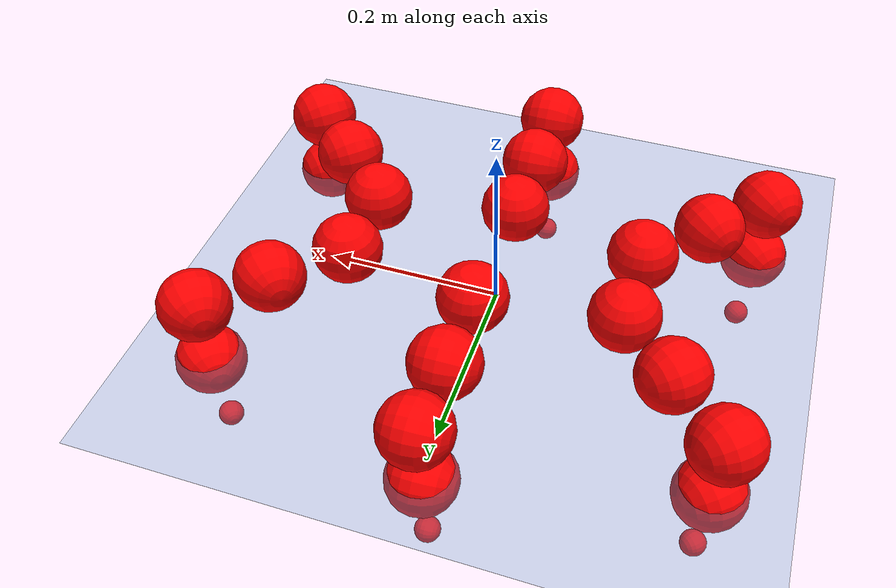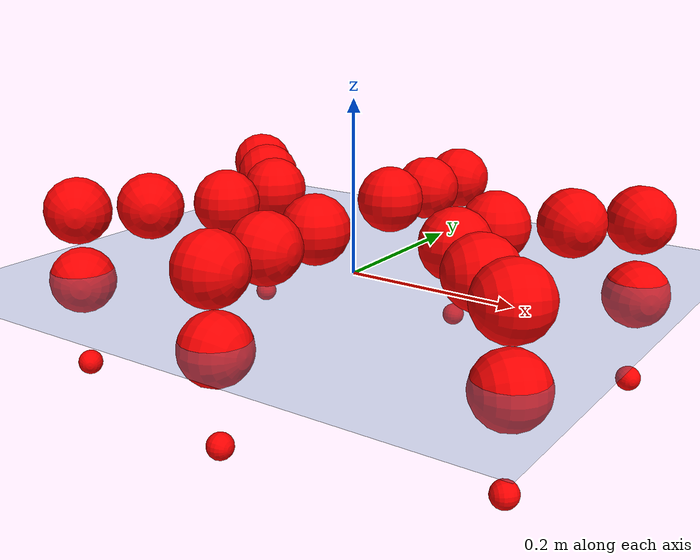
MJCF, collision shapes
<mujoco model="Golem">
  <compiler angle="radian" assetdir="assets" balanceinertia="true" inertiafromgeom="false"/>

  <option timestep="0.005" density="1.2" viscosity="2e-05"/>

  <size nkey="1"/>

  <visual>
    <quality shadowsize="8192"/>
    <map shadowclip="0.5"/>
  </visual>

  <default>
    <default class="/">
      <joint armature="0.01" damping="0.01" frictionloss="0.01"/>
      <geom contype="0" conaffinity="0" group="1" solref="-1000 -80"/>
      <site size="0.01 0.005 0.005" group="5"/>
      <general forcelimited="true" biastype="affine" gainprm="25" biasprm="0 -25 -0.5"/>
      <default class="visual">
        <geom type="mesh" group="2"/>
      </default>
      <default class="collision">
        <geom group="3"/>
      </default>
      <default class="foot">
        <geom size="0.01 0 0" condim="6" group="4" priority="1" solimp="0.015 1 0.01"/>
      </default>
      <default class="reward_collision_sphere">
        <geom group="5" rgba="1 0 0 1"/>
      </default>
    </default>
  </default>

  <asset>
    <texture type="skybox" colorspace="auto" name="//unnamed_texture_0" builtin="gradient" rgb1="0.95 0.95 0.95" rgb2="0.95 0.95 0.95" width="100" height="600"/>
    <texture type="2d" colorspace="auto" name="texplane" builtin="checker" rgb1="0.345 0.575 0.748" rgb2="0.345 0.575 0.748" markrgb="1 1 1" width="512" height="512"/>
    <material name="MatPlane" class="/" texture="texplane" texuniform="true" texrepeat="2 2" specular="0.9"/>
    <mesh name="body" class="/" file="body.stl" scale="0.001 0.001 0.001"/>
    <mesh name="coxa" class="/" file="coxa.stl" scale="0.001 0.001 0.001"/>
    <mesh name="femur" class="/" file="femur.stl" scale="0.001 0.001 0.001"/>
    <mesh name="tibia" class="/" file="tibia.stl" scale="0.001 0.001 0.001"/>
    <mesh name="tarsus" class="/" file="tarsus.stl" scale="0.001 0.001 0.001"/>
  </asset>

  <worldbody>
    <geom name="floor" class="/" size="100 100 0.125" type="plane" group="0" material="MatPlane"/>
    <light name="toplight_shadow" class="/" pos="0 0 5" dir="0.0990148 0.0990148 -0.990148" type="directional" ambient="0.04 0.04 0.04" diffuse="0.55 0.55 0.55" specular="0.12 0.12 0.12"/>
    <light name="toplight_fill" class="/" pos="0 0 5" dir="0.0990148 0.0990148 -0.990148" type="directional" castshadow="false" ambient="0.04 0.04 0.04" diffuse="0.3 0.3 0.3" specular="0.08 0.08 0.08"/>
    <body name="trunk" pos="0.000326958 0.000503715 -0.00260521" quat="1 1.98918e-05 2.15501e-05 -7.29814e-05">
      <inertial pos="0.000517287 -5.12219e-05 -0.00156338" quat="0.999976 -0.00671679 -0.000408307 -0.00163973" mass="3.42046" diaginertia="0.00840474 0.0027975 0.0204609"/>
      <joint name="//unnamed_joint_0" type="free"/>
      <geom name="//unnamed_geom_1" class="/" pos="0 0 0.0739012" quat="1 0 0 0" type="mesh" rgba="0.9 0.9 0.9 1" mesh="body"/>
      <site name="imu" class="/" pos="0.128559 -0.00140242 0.110186" size="0.00965766"/>
      <camera name="track" class="/" pos="0 -1.54301 0" quat="0.707107 0.707107 0 0" mode="trackcom"/>
      <camera name="ego_camera" class="/" pos="0.126241 0 0.115471" quat="-0.5 -0.5 0.5 0.5"/>
      <body name="coxa_RR" pos="-0.173098 -0.0641026 0.0733082" quat="0.382712 8.90334e-05 -1.30194e-05 -0.923868">
        <inertial pos="-7.47449e-05 -0.00253112 0.000871528" quat="0.999992 -0.000411208 0.00278729 -0.0028428" mass="0.173953" diaginertia="0.00822757 0.00271858 0.0195994"/>
        <joint name="coxa_joint_RR" class="/" pos="0 0 0" axis="0.00537845 0.00607545 -0.999967" range="-3.13703 3.11824" armature="0.00950181" damping="0.0132449" frictionloss="0.00964327"/>
        <geom name="//unnamed_geom_2" class="/" type="mesh" rgba="0.2 0.2 0.2 1" mesh="coxa"/>
        <geom name="//unnamed_geom_3" class="reward_collision_sphere" size="0.0386306" pos="-0.0291326 0 0"/>
        <body name="femur_RR" pos="0.0587343 -0.000363204 -0.00014788" quat="0.500158 -0.499643 0.499988 0.50021">
          <inertial pos="0.00110621 0.000202222 -0.000124329" quat="0.999999 -0.000313596 -0.00067553 -0.00150419" mass="0.179375" diaginertia="0.00861718 0.0027132 0.0203874"/>
          <joint name="femur_joint_RR" class="/" pos="0 0 0" axis="0.00036613 0.000248538 -1" range="-3.16023 3.0907" armature="0.00910034" damping="0" frictionloss="0.0102846"/>
          <geom name="//unnamed_geom_4" class="/" type="mesh" rgba="0.9 0.9 0.9 1" mesh="femur"/>
          <geom name="//unnamed_geom_5" class="reward_collision_sphere" size="0.0386306"/>
          <body name="tibia_RR" pos="0.0010687 -0.0818346 0.00231257" quat="2.85698e-05 1 6.78318e-06 2.40383e-05">
            <inertial pos="-0.00207037 -0.000539031 -4.50983e-06" quat="0.999969 -0.00199454 0.00750978 -0.00131035" mass="0.179847" diaginertia="0.00851749 0.00274035 0.0207223"/>
            <joint name="tibia_joint_RR" class="/" pos="0 0 0" axis="0.00111033 -0.00154811 0.999998" range="-3.19073 3.15331" armature="0.00900453" damping="0" frictionloss="0.00977512"/>
            <geom name="//unnamed_geom_6" class="/" type="mesh" rgba="0.2 0.2 0.2 1" mesh="tibia"/>
            <geom name="//unnamed_geom_7" class="reward_collision_sphere" size="0.0386306"/>
            <body name="tarsus_RR" pos="0.0835343 0.00103447 -5.97831e-05" quat="1 0.000153592 -0.000421235 0.000288511">
              <inertial pos="0.0567549 0.00272637 -0.00130785" quat="0.50359 0.499071 0.498239 0.499082" mass="0.178532" diaginertia="0.00856489 0.00271575 0.020442"/>
              <joint name="tarsus_joint_RR" class="/" pos="0 0 0" axis="-0.00021003 0.00100252 0.999999" range="-3.14368 3.13674" armature="0.0104433" damping="0.00712714" frictionloss="0.0105062"/>
              <geom name="//unnamed_geom_8" class="/" type="mesh" rgba="0.9 0.9 0.9 1" mesh="tarsus"/>
              <geom name="foot_1" class="foot" size="0.00910513" pos="0.108762 0 0" quat="0 -0.707107 0 0.707107"/>
              <geom name="//unnamed_geom_10" class="reward_collision_sphere" size="0.0386306"/>
              <geom name="//unnamed_geom_11" class="reward_collision_sphere" size="0.0144865" pos="0.104392 0 0"/>
              <site name="foot_1" class="foot" pos="0.108762 0 0" quat="0 -0.707107 0 0.707107" size="0.00965766"/>
            </body>
          </body>
        </body>
      </body>
      <body name="coxa_RM" pos="-0.000203841 -0.102971 0.0717148" quat="0.707127 -0.000959813 0.000952844 -0.707086">
        <inertial pos="-0.00209599 0.000160153 0.000752411" quat="0.999999 -0.000540818 3.25369e-05 -0.000849402" mass="0.177274" diaginertia="0.00842909 0.00267981 0.020834"/>
        <joint name="coxa_joint_RM" class="/" pos="0 0 0" axis="0.000887368 0.000246728 -1" range="-3.19248 3.14605" armature="0.0101852" damping="0.00983699" frictionloss="0.00966452"/>
        <geom name="//unnamed_geom_12" class="/" type="mesh" rgba="0.2 0.2 0.2 1" mesh="coxa"/>
        <geom name="//unnamed_geom_13" class="reward_collision_sphere" size="0.0386306" pos="-0.0291326 0 0"/>
        <body name="femur_RM" pos="0.0552099 0.000799734 0.000251851" quat="0.500652 -0.499367 0.49951 0.500469">
          <inertial pos="-0.000367806 0.000569014 -0.000673971" quat="0.999936 0.00640535 -0.00809123 -0.00457183" mass="0.184829" diaginertia="0.00885251 0.00273662 0.0208914"/>
          <joint name="femur_joint_RM" class="/" pos="0 0 0" axis="-0.00167554 -0.0020989 -0.999996" range="-3.14329 3.14502" armature="0.00964731" damping="0.00938801" frictionloss="0.0100083"/>
          <geom name="//unnamed_geom_14" class="/" type="mesh" rgba="0.9 0.9 0.9 1" mesh="femur"/>
          <geom name="//unnamed_geom_15" class="reward_collision_sphere" size="0.0386306"/>
          <body name="tibia_RM" pos="-0.000906318 -0.0826415 0.00172828" quat="-6.04586e-05 1 0.000213264 0.000185333">
            <inertial pos="0.00113018 0.0021234 0.00056445" quat="0.99999 -0.000610609 0.00160035 0.00422436" mass="0.185908" diaginertia="0.00895914 0.00282046 0.0212707"/>
            <joint name="tibia_joint_RM" class="/" pos="0 0 0" axis="-0.00141042 0.000672112 0.999999" range="-3.11641 3.08682" armature="0.00963983" damping="0" frictionloss="0.00992588"/>
            <geom name="//unnamed_geom_16" class="/" type="mesh" rgba="0.2 0.2 0.2 1" mesh="tibia"/>
            <geom name="//unnamed_geom_17" class="reward_collision_sphere" size="0.0386306"/>
            <body name="tarsus_RM" pos="0.082509 -0.00254638 0.000711956" quat="1 -0.00023686 -0.000658943 -0.00010422">
              <inertial pos="0.0577085 0.00303214 -0.000728012" quat="0.499324 0.499965 0.501338 0.499371" mass="0.171227" diaginertia="0.00852372 0.00265793 0.0202161"/>
              <joint name="tarsus_joint_RM" class="/" pos="0 0 0" axis="0.00134166 0.000296018 0.999999" range="-3.14273 3.15352" armature="0.00987161" damping="0.00344241" frictionloss="0.00959423"/>
              <geom name="//unnamed_geom_18" class="/" type="mesh" rgba="0.9 0.9 0.9 1" mesh="tarsus"/>
              <geom name="foot_2" class="foot" size="0.00943566" pos="0.108762 0 0" quat="0 -0.707107 0 0.707107"/>
              <geom name="//unnamed_geom_20" class="reward_collision_sphere" size="0.0386306"/>
              <geom name="//unnamed_geom_21" class="reward_collision_sphere" size="0.0144865" pos="0.104392 0 0"/>
              <site name="foot_2" class="foot" pos="0.108762 0 0" quat="0 -0.707107 0 0.707107" size="0.00965766"/>
            </body>
          </body>
        </body>
      </body>
      <body name="coxa_RF" pos="0.174294 -0.0638736 0.0733098" quat="0.923841 -0.000157807 0.00059091 -0.382776">
        <inertial pos="-0.00232997 -0.0010856 0.00216828" quat="0.999998 -0.00156888 -0.000303574 -0.00109445" mass="0.183662" diaginertia="0.00881975 0.00273061 0.0209234"/>
        <joint name="coxa_joint_RF" class="/" pos="0 0 0" axis="-9.07484e-05 0.00155351 -0.999999" range="-3.15022 3.13604" armature="0.00871095" damping="0.00732074" frictionloss="0.0100223"/>
        <geom name="//unnamed_geom_22" class="/" type="mesh" rgba="0.2 0.2 0.2 1" mesh="coxa"/>
        <geom name="//unnamed_geom_23" class="reward_collision_sphere" size="0.0386306" pos="-0.0291326 0 0"/>
        <body name="femur_RF" pos="0.0598958 -0.000879026 -0.000898918" quat="0.499404 -0.499677 0.499979 0.500939">
          <inertial pos="0.00040109 0.000179069 5.94846e-05" quat="1 0.000388218 2.67074e-05 2.2136e-05" mass="0.169602" diaginertia="0.00861628 0.00267706 0.0197383"/>
          <joint name="femur_joint_RF" class="/" pos="0 0 0" axis="-0.00204245 0.000663659 -0.999998" range="-3.15416 3.08774" armature="0.00848818" damping="0.00101606" frictionloss="0.00838283"/>
          <geom name="//unnamed_geom_24" class="/" type="mesh" rgba="0.9 0.9 0.9 1" mesh="femur"/>
          <geom name="//unnamed_geom_25" class="reward_collision_sphere" size="0.0386306"/>
          <body name="tibia_RF" pos="-0.0011808 -0.0807581 0.00248507" quat="3.25511e-05 1 3.56815e-05 8.00416e-05">
            <inertial pos="-0.00230606 0.000828153 -8.20308e-05" quat="0.999996 -0.00166679 0.000456358 -0.00216019" mass="0.178802" diaginertia="0.00835154 0.00270497 0.0203312"/>
            <joint name="tibia_joint_RF" class="/" pos="0 0 0" axis="0.00252912 -0.00223487 0.999994" range="-3.12466 3.14805" armature="0.00948851" damping="0" frictionloss="0.00989593"/>
            <geom name="//unnamed_geom_26" class="/" type="mesh" rgba="0.2 0.2 0.2 1" mesh="tibia"/>
            <geom name="//unnamed_geom_27" class="reward_collision_sphere" size="0.0386306"/>
            <body name="tarsus_RF" pos="0.0835741 -0.00107844 -0.00218576" quat="1 -0.00026816 -0.000157801 -0.000570811">
              <inertial pos="0.0561704 -0.000385024 -0.000629147" quat="0.48897 0.500923 0.505897 0.504036" mass="0.178329" diaginertia="0.00865842 0.00277878 0.0198736"/>
              <joint name="tarsus_joint_RF" class="/" pos="0 0 0" axis="-0.00297629 -0.00140148 0.999995" range="-3.12054 3.13771" armature="0.00839727" damping="0.0013488" frictionloss="0.00860713"/>
              <geom name="//unnamed_geom_28" class="/" type="mesh" rgba="0.9 0.9 0.9 1" mesh="tarsus"/>
              <geom name="foot_3" class="foot" size="0.00939152" pos="0.108762 0 0" quat="0 -0.707107 0 0.707107"/>
              <geom name="//unnamed_geom_30" class="reward_collision_sphere" size="0.0386306"/>
              <geom name="//unnamed_geom_31" class="reward_collision_sphere" size="0.0144865" pos="0.104392 0 0"/>
              <site name="foot_3" class="foot" pos="0.108762 0 0" quat="0 -0.707107 0 0.707107" size="0.00965766"/>
            </body>
          </body>
        </body>
      </body>
      <body name="coxa_LR" pos="-0.172823 0.0666602 0.072212" quat="0.382904 -0.000111117 0.000161836 0.923788">
        <inertial pos="-0.00061541 -0.000511429 4.03143e-05" quat="0.999917 0.00433321 -0.00430863 0.0113414" mass="0.18155" diaginertia="0.00862279 0.0027895 0.0205022"/>
        <joint name="coxa_joint_LR" class="/" pos="0 0 0" axis="0.000465863 0.00247044 -0.999997" range="-3.1415 3.13442" armature="0.0105609" damping="0.0151588" frictionloss="0.00923731"/>
        <geom name="//unnamed_geom_32" class="/" type="mesh" rgba="0.2 0.2 0.2 1" mesh="coxa"/>
        <geom name="//unnamed_geom_33" class="reward_collision_sphere" size="0.0386306" pos="-0.0291326 0 0"/>
        <body name="femur_LR" pos="0.0568033 -4.70448e-05 0.00130132" quat="0.500195 -0.500218 0.500099 0.499487">
          <inertial pos="-0.00222145 -0.00259756 0.00234905" quat="1 -0.000173548 -0.00053275 0.000203067" mass="0.186027" diaginertia="0.00865427 0.00281696 0.020803"/>
          <joint name="femur_joint_LR" class="/" pos="0 0 0" axis="-0.0134055 -0.00409616 0.999902" range="-3.16621 3.10656" armature="0.0109101" damping="0" frictionloss="0.00864002"/>
          <geom name="//unnamed_geom_34" class="/" type="mesh" rgba="0.9 0.9 0.9 1" mesh="femur"/>
          <geom name="//unnamed_geom_35" class="reward_collision_sphere" size="0.0386306"/>
          <body name="tibia_LR" pos="0.00160115 -0.0865605 -0.000655002" quat="-0.000173852 1 8.02377e-05 -1.92509e-05">
            <inertial pos="-6.19166e-05 -0.0024457 -0.00015751" quat="1 -0.000200897 0.0001069 0.000138269" mass="0.173383" diaginertia="0.00842087 0.00269595 0.019522"/>
            <joint name="tibia_joint_LR" class="/" pos="0 0 0" axis="-0.00619017 0.00927868 -0.999938" range="-3.14365 3.09159" armature="0.00958007" damping="0" frictionloss="0.0102612"/>
            <geom name="//unnamed_geom_36" class="/" type="mesh" rgba="0.2 0.2 0.2 1" mesh="tibia"/>
            <geom name="//unnamed_geom_37" class="reward_collision_sphere" size="0.0386306"/>
            <body name="tarsus_LR" pos="0.088733 -0.00110098 -0.000408682" quat="1 -0.000209502 -0.000329808 0.000363056">
              <inertial pos="0.0592858 0.000110123 -0.00158536" quat="0.500394 0.498752 0.502104 0.498743" mass="0.177448" diaginertia="0.00863969 0.00274271 0.0201916"/>
              <joint name="tarsus_joint_LR" class="/" pos="0 0 0" axis="0.000451035 -0.000210708 -1" range="-3.17569 3.13909" armature="0.00866099" damping="0.0274508" frictionloss="0.0093975"/>
              <geom name="//unnamed_geom_38" class="/" type="mesh" rgba="0.9 0.9 0.9 1" mesh="tarsus"/>
              <geom name="foot_4" class="foot" size="0.00987839" pos="0.108762 0 0" quat="0.707107 0 -0.707107 0"/>
              <geom name="//unnamed_geom_40" class="reward_collision_sphere" size="0.0386306"/>
              <geom name="//unnamed_geom_41" class="reward_collision_sphere" size="0.0144865" pos="0.104392 0 0"/>
              <site name="foot_4" class="foot" pos="0.108762 0 0" quat="0.707107 0 -0.707107 0" size="0.00965766"/>
            </body>
          </body>
        </body>
      </body>
      <body name="coxa_LM" pos="0.00210404 0.100773 0.0752778" quat="0.707299 0.000117115 0.000127349 0.706915">
        <inertial pos="0.00123361 -0.000965054 -0.000161244" quat="1 0.000221854 0.000333726 0.000434752" mass="0.174347" diaginertia="0.00879913 0.00272896 0.0201352"/>
        <joint name="coxa_joint_LM" class="/" pos="0 0 0" axis="-0.0105483 -0.00393106 -0.999937" range="-3.14642 3.19179" armature="0.00958718" damping="0.00815919" frictionloss="0.00972984"/>
        <geom name="//unnamed_geom_42" class="/" type="mesh" rgba="0.2 0.2 0.2 1" mesh="coxa"/>
        <geom name="//unnamed_geom_43" class="reward_collision_sphere" size="0.0386306" pos="-0.0291326 0 0"/>
        <body name="femur_LM" pos="0.0575668 0.000393045 -0.00292057" quat="0.499062 -0.500473 0.499959 0.500504">
          <inertial pos="0.00156344 0.000356564 -0.00126761" quat="1 -0.000691269 -0.000512891 -8.01028e-05" mass="0.190209" diaginertia="0.00894095 0.00279762 0.0214832"/>
          <joint name="femur_joint_LM" class="/" pos="0 0 0" axis="-0.00299496 0.00592675 0.999978" stiffness="0.0108613" range="-3.19006 3.09002" armature="0.00924294" damping="0.00104869" frictionloss="0.0102593"/>
          <geom name="//unnamed_geom_44" class="/" type="mesh" rgba="0.9 0.9 0.9 1" mesh="femur"/>
          <geom name="//unnamed_geom_45" class="reward_collision_sphere" size="0.0386306"/>
          <body name="tibia_LM" pos="0.00197692 -0.0801703 -0.000681991" quat="-0.000486881 1 0.000178866 -1.44037e-06">
            <inertial pos="0.00127159 -0.00132555 0.000511837" quat="0.999992 -0.00188671 0.00110808 -0.00327097" mass="0.18018" diaginertia="0.00870165 0.00266222 0.0208349"/>
            <joint name="tibia_joint_LM" class="/" pos="0 0 0" axis="0.00319639 -0.00390589 -0.999987" range="-3.14948 3.13591" armature="0.00852476" damping="0" frictionloss="0.0094745"/>
            <geom name="//unnamed_geom_46" class="/" type="mesh" rgba="0.2 0.2 0.2 1" mesh="tibia"/>
            <geom name="//unnamed_geom_47" class="reward_collision_sphere" size="0.0386306"/>
            <body name="tarsus_LM" pos="0.0875851 -0.000405296 -0.00087031" quat="1 -1.25881e-05 -4.89287e-06 1.7352e-05">
              <inertial pos="0.0588969 0.000197191 0.00193" quat="0.499908 0.500154 0.499972 0.499965" mass="0.180568" diaginertia="0.00834089 0.00279562 0.0205798"/>
              <joint name="tarsus_joint_LM" class="/" pos="0 0 0" axis="-0.0012012 0.000752415 -0.999999" range="-3.11953 3.15046" armature="0.00954353" damping="0.00441412" frictionloss="0.00973508"/>
              <geom name="//unnamed_geom_48" class="/" type="mesh" rgba="0.9 0.9 0.9 1" mesh="tarsus"/>
              <geom name="foot_5" class="foot" size="0.00876956" pos="0.108762 0 0" quat="0.707107 0 -0.707107 0"/>
              <geom name="//unnamed_geom_50" class="reward_collision_sphere" size="0.0386306"/>
              <geom name="//unnamed_geom_51" class="reward_collision_sphere" size="0.0144865" pos="0.104392 0 0"/>
              <site name="foot_5" class="foot" pos="0.108762 0 0" quat="0.707107 0 -0.707107 0" size="0.00965766"/>
            </body>
          </body>
        </body>
      </body>
      <body name="coxa_LF" pos="0.17525 0.0636446 0.0728766" quat="0.924247 0.000151095 0.000812611 0.381794">
        <inertial pos="0.0005924 -0.000213606 0.00202587" quat="0.999986 0.000235709 -0.00519194 0.00104876" mass="0.181004" diaginertia="0.00879375 0.00266374 0.0206277"/>
        <joint name="coxa_joint_LF" class="/" pos="0 0 0" axis="0.0117398 -0.00553252 -0.999916" range="-3.15636 3.13728" armature="0.0096379" damping="0.0108529" frictionloss="0.00868418"/>
        <geom name="//unnamed_geom_52" class="/" type="mesh" rgba="0.2 0.2 0.2 1" mesh="coxa"/>
        <geom name="//unnamed_geom_53" class="reward_collision_sphere" size="0.0386306" pos="-0.0291326 0 0"/>
        <body name="femur_LF" pos="0.0589176 0.000186984 -0.000879597" quat="0.500146 -0.499887 0.50012 0.499847">
          <inertial pos="-0.000350434 0.000179377 0.00249332" quat="0.999981 -0.00293498 -0.00383228 0.00386195" mass="0.185915" diaginertia="0.00843955 0.00276733 0.0205591"/>
          <joint name="femur_joint_LF" class="/" pos="0 0 0" axis="-0.00949707 0.00035456 0.999955" stiffness="0.000435286" range="-3.1428 3.13564" armature="0.00982282" damping="0.00851285" frictionloss="0.0107652"/>
          <geom name="//unnamed_geom_54" class="/" type="mesh" rgba="0.9 0.9 0.9 1" mesh="femur"/>
          <geom name="//unnamed_geom_55" class="reward_collision_sphere" size="0.0386306"/>
          <body name="tibia_LF" pos="0.00104929 -0.0816408 0.00249285" quat="-0.00103872 0.999999 -0.000731552 0.000105579">
            <inertial pos="-0.000849941 0.00115271 -0.00222672" quat="0.999918 0.00838796 0.00757876 -0.00597854" mass="0.187029" diaginertia="0.008763 0.00274267 0.0205439"/>
            <joint name="tibia_joint_LF" class="/" pos="0 0 0" axis="-0.000397482 -0.000573857 -1" range="-3.08739 3.1332" armature="0.00967781" damping="0.0149657" frictionloss="0.00969164"/>
            <geom name="//unnamed_geom_56" class="/" type="mesh" rgba="0.2 0.2 0.2 1" mesh="tibia"/>
            <geom name="//unnamed_geom_57" class="reward_collision_sphere" size="0.0386306"/>
            <body name="tarsus_LF" pos="0.0878788 0.00248831 -2.11218e-05" quat="1 3.34389e-06 6.23726e-06 -1.03011e-06">
              <inertial pos="0.0560136 0.00101457 -5.05838e-06" quat="0.499843 0.500078 0.499967 0.500113" mass="0.175826" diaginertia="0.00846562 0.0026622 0.0207591"/>
              <joint name="tarsus_joint_LF" class="/" pos="0 0 0" axis="0.0126646 0.000567089 -0.99992" range="-3.13339 3.09884" armature="0.010867" damping="0.00661851" frictionloss="0.0109339"/>
              <geom name="//unnamed_geom_58" class="/" type="mesh" rgba="0.9 0.9 0.9 1" mesh="tarsus"/>
              <geom name="foot_6" class="foot" size="0.00917037" pos="0.108762 0 0" quat="0.707107 0 -0.707107 0"/>
              <geom name="//unnamed_geom_60" class="reward_collision_sphere" size="0.0386306"/>
              <geom name="//unnamed_geom_61" class="reward_collision_sphere" size="0.0144865" pos="0.104392 0 0"/>
              <site name="foot_6" class="foot" pos="0.108762 0 0" quat="0.707107 0 -0.707107 0" size="0.00965766"/>
            </body>
          </body>
        </body>
      </body>
    </body>
  </worldbody>

  <contact>
    <pair class="/" geom1="floor" geom2="foot_1" name="//unnamed_contact_0"/>
    <pair class="/" geom1="floor" geom2="foot_2" name="//unnamed_contact_1"/>
    <pair class="/" geom1="floor" geom2="foot_3" name="//unnamed_contact_2"/>
    <pair class="/" geom1="floor" geom2="foot_4" name="//unnamed_contact_3"/>
    <pair class="/" geom1="floor" geom2="foot_5" name="//unnamed_contact_4"/>
    <pair class="/" geom1="floor" geom2="foot_6" name="//unnamed_contact_5"/>
  </contact>

  <actuator>
    <general name="coxa_joint_RR" class="/" joint="coxa_joint_RR" forcerange="-7.26234 7.26234" gainprm="23.2069" biasprm="0 -23.2069 -0.498341"/>
    <general name="femur_joint_RR" class="/" joint="femur_joint_RR" forcerange="-7.45619 7.45619" gainprm="23.2069" biasprm="0 -23.2069 -0.498341"/>
    <general name="tibia_joint_RR" class="/" joint="tibia_joint_RR" forcerange="-6.5999 6.5999" gainprm="23.2069" biasprm="0 -23.2069 -0.498341"/>
    <general name="tarsus_joint_RR" class="/" joint="tarsus_joint_RR" forcerange="-6.52079 6.52079" gainprm="23.2069" biasprm="0 -23.2069 -0.498341"/>
    <general name="coxa_joint_RM" class="/" joint="coxa_joint_RM" forcerange="-6.39152 6.39152" gainprm="23.2069" biasprm="0 -23.2069 -0.498341"/>
    <general name="femur_joint_RM" class="/" joint="femur_joint_RM" forcerange="-6.86846 6.86846" gainprm="23.2069" biasprm="0 -23.2069 -0.498341"/>
    <general name="tibia_joint_RM" class="/" joint="tibia_joint_RM" forcerange="-7.08467 7.08467" gainprm="23.2069" biasprm="0 -23.2069 -0.498341"/>
    <general name="tarsus_joint_RM" class="/" joint="tarsus_joint_RM" forcerange="-6.90252 6.90252" gainprm="23.2069" biasprm="0 -23.2069 -0.498341"/>
    <general name="coxa_joint_RF" class="/" joint="coxa_joint_RF" forcerange="-7.1194 7.1194" gainprm="23.2069" biasprm="0 -23.2069 -0.498341"/>
    <general name="femur_joint_RF" class="/" joint="femur_joint_RF" forcerange="-7.74822 7.74822" gainprm="23.2069" biasprm="0 -23.2069 -0.498341"/>
    <general name="tibia_joint_RF" class="/" joint="tibia_joint_RF" forcerange="-7.72222 7.72222" gainprm="23.2069" biasprm="0 -23.2069 -0.498341"/>
    <general name="tarsus_joint_RF" class="/" joint="tarsus_joint_RF" forcerange="-7.68171 7.68171" gainprm="23.2069" biasprm="0 -23.2069 -0.498341"/>
    <general name="coxa_joint_LR" class="/" joint="coxa_joint_LR" forcerange="-7.10856 7.10856" gainprm="23.2069" biasprm="0 -23.2069 -0.498341"/>
    <general name="femur_joint_LR" class="/" joint="femur_joint_LR" forcerange="-7.03824 7.03824" gainprm="23.2069" biasprm="0 -23.2069 -0.498341"/>
    <general name="tibia_joint_LR" class="/" joint="tibia_joint_LR" forcerange="-7.7496 7.7496" gainprm="23.2069" biasprm="0 -23.2069 -0.498341"/>
    <general name="tarsus_joint_LR" class="/" joint="tarsus_joint_LR" forcerange="-7.72029 7.72029" gainprm="23.2069" biasprm="0 -23.2069 -0.498341"/>
    <general name="coxa_joint_LM" class="/" joint="coxa_joint_LM" forcerange="-7.19711 7.19711" gainprm="23.2069" biasprm="0 -23.2069 -0.498341"/>
    <general name="femur_joint_LM" class="/" joint="femur_joint_LM" forcerange="-7.02919 7.02919" gainprm="23.2069" biasprm="0 -23.2069 -0.498341"/>
    <general name="tibia_joint_LM" class="/" joint="tibia_joint_LM" forcerange="-7.07544 7.07544" gainprm="23.2069" biasprm="0 -23.2069 -0.498341"/>
    <general name="tarsus_joint_LM" class="/" joint="tarsus_joint_LM" forcerange="-7.23023 7.23023" gainprm="23.2069" biasprm="0 -23.2069 -0.498341"/>
    <general name="coxa_joint_LF" class="/" joint="coxa_joint_LF" forcerange="-7.06199 7.06199" gainprm="23.2069" biasprm="0 -23.2069 -0.498341"/>
    <general name="femur_joint_LF" class="/" joint="femur_joint_LF" forcerange="-7.66197 7.66197" gainprm="23.2069" biasprm="0 -23.2069 -0.498341"/>
    <general name="tibia_joint_LF" class="/" joint="tibia_joint_LF" forcerange="-7.60261 7.60261" gainprm="23.2069" biasprm="0 -23.2069 -0.498341"/>
    <general name="tarsus_joint_LF" class="/" joint="tarsus_joint_LF" forcerange="-7.09809 7.09809" gainprm="23.2069" biasprm="0 -23.2069 -0.498341"/>
  </actuator>

  <sensor>
    <gyro site="imu" name="imu_angular_velocity"/>
    <velocimeter site="imu" name="imu_linear_velocity"/>
    <framelinvel objtype="site" objname="foot_1" name="foot_1_global_linear_velocity"/>
    <framelinvel objtype="site" objname="foot_2" name="foot_2_global_linear_velocity"/>
    <framelinvel objtype="site" objname="foot_3" name="foot_3_global_linear_velocity"/>
    <framelinvel objtype="site" objname="foot_4" name="foot_4_global_linear_velocity"/>
    <framelinvel objtype="site" objname="foot_5" name="foot_5_global_linear_velocity"/>
    <framelinvel objtype="site" objname="foot_6" name="foot_6_global_linear_velocity"/>
  </sensor>

  <keyframe>
    <key name="home" qpos="0 0 0.1457 1 0 0 0 0 0 0 0 0 0 0 0 0 0 0 0 0 0 0 0 0 0 0 0 0 0 0 0"/>
  </keyframe>
</mujoco>
